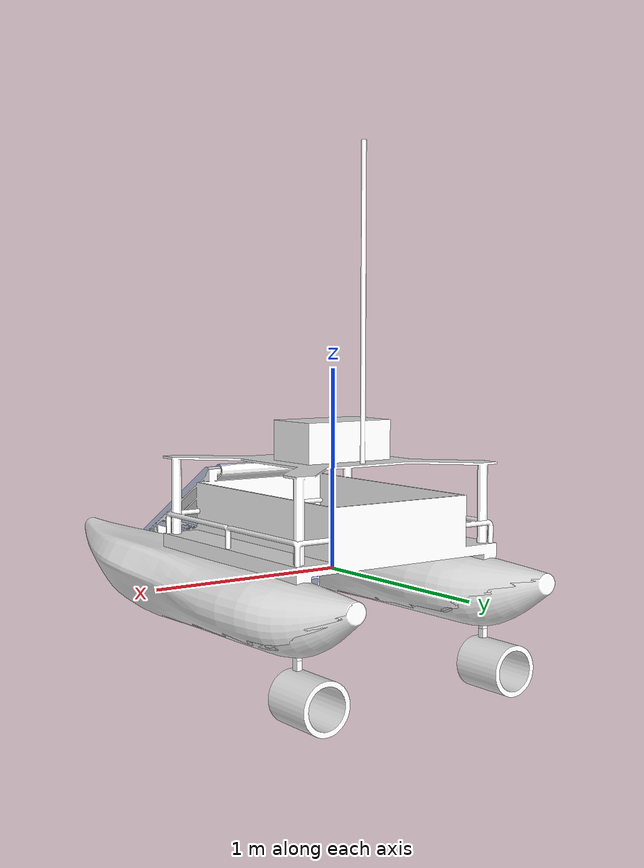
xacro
<?xml version="1.0"?>
<robot xmlns:xacro="https://www.ros.org/wiki/xacro" name="catamaran_full">
    <xacro:include filename="$(find catamaran)/urdf/catamaran.urdf"/>

    <xacro:include filename="$(find triton)/urdf/360_camera.urdf"/>

    <xacro:include filename="$(find triton)/urdf/2D_lidar.urdf"/>

    <gazebo>
      <plugin filename="libusv_gazebo_dynamics_plugin.so" name="usv_dynamics_wamv_dynamics_plugin">
        <bodyName>base_footprint</bodyName>
        <!-- Must be same as the ocean model!-->
        <waterLevel>0</waterLevel>
        <waterDensity>997.8</waterDensity>
        <!-- Added mass -->
        <xDotU>0.0</xDotU>
        <yDotV>0.0</yDotV>
        <nDotR>0.0</nDotR>
        <!-- Linear and quadratic drag -->
        <xU>51.3</xU>
        <xUU>72.4</xUU>
        <yV>40.0</yV>
        <yVV>0.0</yVV>
        <zW>500.0</zW>
        <kP>50.0</kP>
        <mQ>50.0</mQ>
        <nR>400.0</nR>
        <nRR>0.0</nRR>
        <!-- General dimensions -->
        <hullRadius>0.5</hullRadius>
        <boatWidth>1.55</boatWidth>
        <boatLength>2.5</boatLength>
        <!-- Length discretization, AKA, "N" -->
        <length_n>2</length_n>
        <!-- Wave model -->
        <wave_model>ocean_waves</wave_model>
      </plugin>
      <plugin name="thruster_plugin" filename="libthruster_plugin.so">
        <link_name>base_footprint</link_name>
        <ros_topic>thruster_forces</ros_topic>
        <left_force_point>
          <xyz>0.558 0.550 -0.450</xyz>
        </left_force_point>
        <right_force_point>
          <xyz>-0.558 0.550 -0.450</xyz>
        </right_force_point>
      </plugin>
    </gazebo>
</robot>

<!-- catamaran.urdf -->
<robot
  name="catamaran">
  <link name="base_footprint"/>
  <joint name="footprint_to_base_link" type="fixed">
    <parent link="base_footprint"/>
    <child link="base_link"/>
    <origin xyz="0 0 0" rpy="0 0 0"/>
  </joint>
  <link
    name="base_link">
    <inertial>
      <origin
        xyz="-4.0469E-06 -0.038627 0.28088"
        rpy="0 0 0" />
      <mass
        value="65" />
      <inertia
        ixx="21.612"
        ixy="0.000069785"
        ixz="0.00018538"
        iyy="22.401"
        iyz="-0.49268"
        izz="1.8827" />
    </inertial>
    <visual>
      <origin
        xyz="0 0 0"
        rpy="0 0 0" />
      <geometry>
        <mesh
          filename="package://catamaran/meshes/base_link.STL" />
      </geometry>
      <material
        name="">
        <color
          rgba="1 1 1 1" />
      </material>
    </visual>
    <collision>
      <origin
        xyz="0 0 0"
        rpy="0 0 0" />
      <geometry>
        <mesh
          filename="package://catamaran/meshes/base_link.STL" />
      </geometry>
    </collision>
  </link>
  <link
    name="l_thruster">
    <visual>
      <origin
        xyz="0 0 0"
        rpy="0 0 0" />
      <geometry>
        <mesh
          filename="package://catamaran/meshes/l_thruster.STL" />
      </geometry>
      <material
        name="">
        <color
          rgba="1 1 1 1" />
      </material>
    </visual>
  </link>
  <joint
    name="base_to_l_thrruster"
    type="fixed">
    <origin
      xyz="0.55834 0.43963 -0.45538"
      rpy="1.5708 0 3.1416" />
    <parent
      link="base_link" />
    <child
      link="l_thruster" />
    <axis
      xyz="0 0 0" />
  </joint>
  <link
    name="r_thruster">
    <visual>
      <origin
        xyz="0 0 0"
        rpy="0 0 0" />
      <geometry>
        <mesh
          filename="package://catamaran/meshes/r_thruster.STL" />
      </geometry>
      <material
        name="">
        <color
          rgba="1 1 1 1" />
      </material>
    </visual>
  </link>
  <joint
    name="base_to_r_thruster"
    type="fixed">
    <origin
      xyz="-0.56166 0.43963 -0.45538"
      rpy="1.5708 0 3.1416" />
    <parent
      link="base_link" />
    <child
      link="r_thruster" />
    <axis
      xyz="0 0 0" />
  </joint>
  <link
    name="conveyor">
    <visual>
      <origin
        xyz="0 0 0"
        rpy="0 0 0" />
      <geometry>
        <mesh
          filename="package://catamaran/meshes/conveyor.STL" />
      </geometry>
      <material
        name="">
        <color
          rgba="0.79216 0.81961 0.93333 1" />
      </material>
    </visual>
    <collision>
      <origin
        xyz="0 0 0"
        rpy="0 0 0" />
      <geometry>
        <mesh
          filename="package://catamaran/meshes/conveyor.STL" />
      </geometry>
    </collision>
  </link>
  <joint
    name="base_to_conveyor"
    type="fixed">
    <origin
      xyz="0 -0.68537 0.44462"
      rpy="1.5708 0 0" />
    <parent
      link="base_link" />
    <child
      link="conveyor" />
    <axis
      xyz="0 0 0" />
  </joint>
</robot>

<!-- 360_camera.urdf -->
<robot name="360_camera">
    <joint name="base_to_front_camera" type="fixed">
        <parent link="base_link"/>
        <child link="front_camera_link"/>
        <origin xyz="0 0.25 1.6" rpy="0 0 -1.5708"/>
    </joint>
    <joint name="base_to_back_camera" type="fixed">
        <parent link="base_link"/>
        <child link="back_camera_link"/>
        <origin xyz="0 0.25 1.6" rpy="0 0 1.5708"/>
    </joint>

    <link name="front_camera_link">
    </link>

    <link name="back_camera_link">
    </link>

    <gazebo reference="front_camera_link">
        <sensor name="camera" type="wideanglecamera">
            <camera>
            <horizontal_fov>3.1415</horizontal_fov>
            <image>
                <width>360</width>
                <height>360</height>
            </image>
            <clip>
                <near>0.1</near>
                <far>100</far>
            </clip>

                <!-- A new section named `lens`. -->
                <custom_function>
                <c1>1.0</c1>   <!-- linear scaling -->
                <c2>1.0</c2>   <!-- angle scaling (1 for true fisheye) -->
                <f>1.0</f>     <!-- overall scaling parameter -->
                <fun>sin</fun> <!-- sin for fisheye distortion -->
            </custom_function>
            </camera>

            <plugin name="camera_controller" filename="libgazebo_ros_camera.so">
            <cameraName>front_camera</cameraName>
            <imageTopicName>image_raw</imageTopicName>
            <cameraInfoTopicName>camera_info</cameraInfoTopicName>
            <frameName>camera_link</frameName>
            <hackBaseline>0.07</hackBaseline>
            </plugin>

            <always_on>1</always_on>
            <update_rate>30</update_rate>
        </sensor>
    </gazebo>

    <gazebo reference="back_camera_link">
        <sensor name="camera" type="wideanglecamera">
            <camera>
            <horizontal_fov>3.1415</horizontal_fov>
            <image>
                <width>360</width>
                <height>360</height>
            </image>
            <clip>
                <near>0.1</near>
                <far>100</far>
            </clip>

                <!-- A new section named `lens`. -->
                <custom_function>
                <c1>1.0</c1>   <!-- linear scaling -->
                <c2>1.0</c2>   <!-- angle scaling (1 for true fisheye) -->
                <f>1.0</f>     <!-- overall scaling parameter -->
                <fun>sin</fun> <!-- sin for fisheye distortion -->
            </custom_function>
            </camera>

            <plugin name="camera_controller" filename="libgazebo_ros_camera.so">
            <cameraName>back_camera</cameraName>
            <imageTopicName>image_raw</imageTopicName>
            <cameraInfoTopicName>camera_info</cameraInfoTopicName>
            <frameName>camera_link</frameName>
            <hackBaseline>0.07</hackBaseline>
            </plugin>

            <always_on>1</always_on>
            <update_rate>30</update_rate>
        </sensor>
    </gazebo>
</robot>

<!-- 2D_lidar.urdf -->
<robot name="360_camera">
<!-- 2D LiDAR -->
<material name="red">
    <color rgba="1 0 0 1"/>
  </material>
  <joint name="laser_joint" type="fixed">
    <parent link="base_link"/>
    <child link="laser_frame"/>
    <origin xyz="0 -0.33 0.62" rpy="0 0 -1.570796"/>
  </joint>
  <link name="laser_frame">
    <visual>
      <geometry>
        <cylinder radius="0.05" length="0.04"/>
      </geometry>
      <material name="red"/>
    </visual>
    <collision>
      <geometry>
        <cylinder radius="0.05" length="0.04"/>
      </geometry>
    </collision>
    <inertial>
      <origin xyz="0 0 0" rpy="0 0 0"/>
      <mass value="0"/>
      <inertia ixx="0" ixy="0" ixz="0" iyy="0" iyz="0" izz="0"/>
    </inertial>
  </link>

    <gazebo reference="laser_frame">
        <material>Gazebo/Red</material>
        <sensor name="laser" type="ray">
            <visualize>false</visualize>
            <update_rate>30</update_rate>
            <ray>
            <scan>
                <horizontal>
                <samples>360</samples>
                <min_angle>-3.14</min_angle>
                <max_angle>3.14</max_angle>
                </horizontal>
            </scan>
            <range>
                <min>1</min>
                <max>25</max>
            </range>
            </ray>
            <plugin name="gazebo_ros_laser" filename="libgazebo_ros_laser.so">
            <robotNamespace>/</robotNamespace>
            <topicName>/scan</topicName>
            <frameName>laser_frame</frameName>
            <updateRate>30</updateRate>
            </plugin>
        </sensor>
    </gazebo>
</robot>
